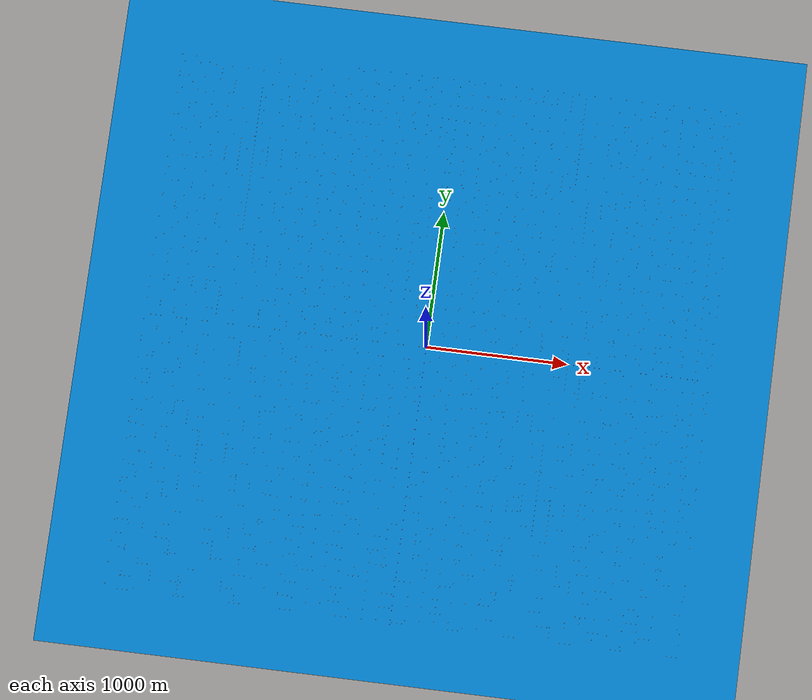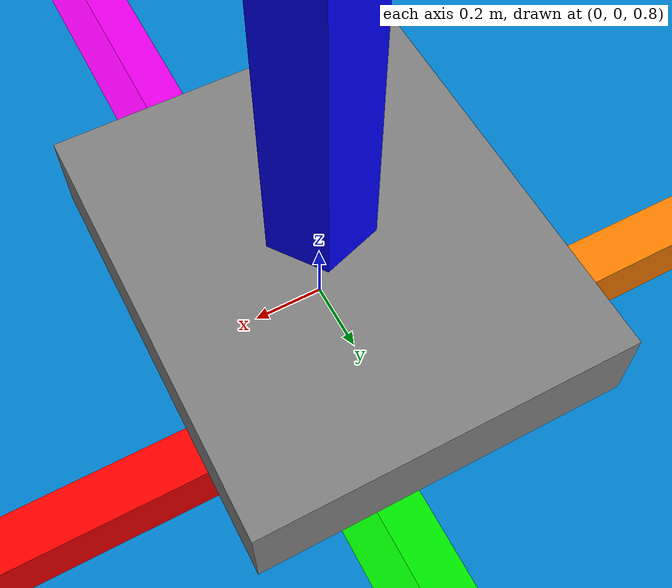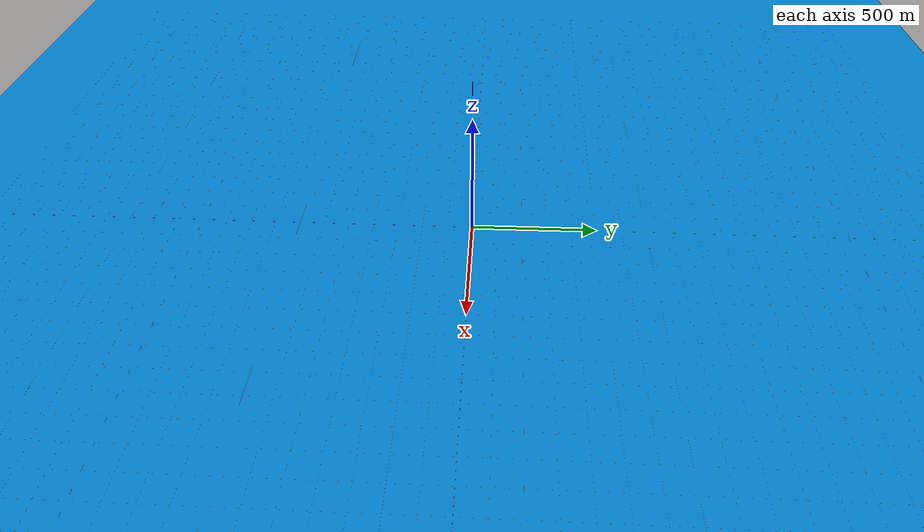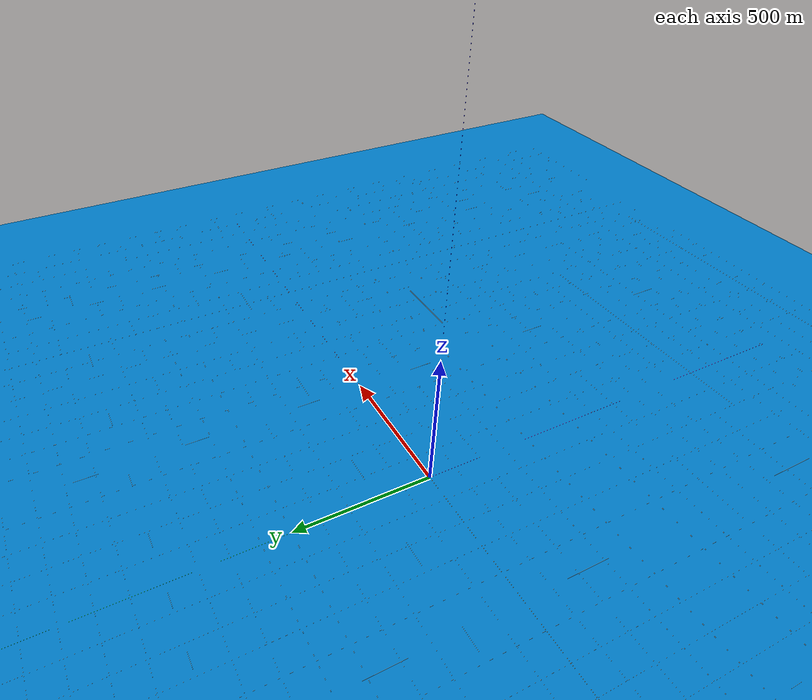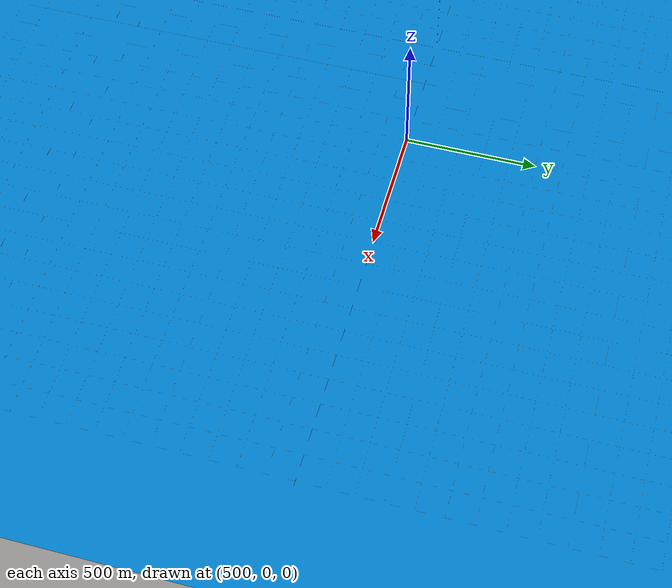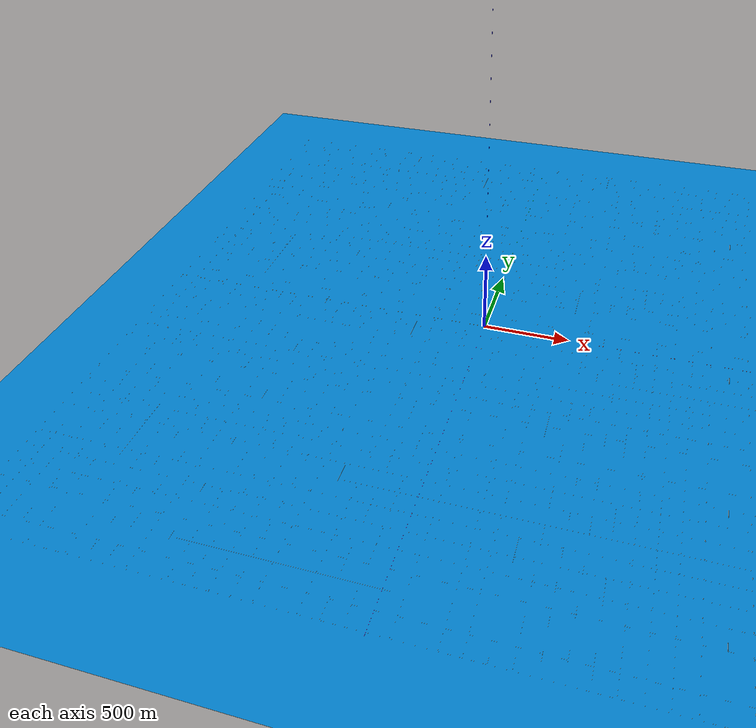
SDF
<?xml version="1.0" ?>
<sdf version="1.9">
  <world name="vuelo">

    <!-- Gravedad desactivada: Simulink calcula la dinámica completa -->
    <gravity>0 0 0</gravity>

    <!-- Física: paso de integración rápido para sincronizar con Simulink a 100Hz -->
    <physics name="default_physics" type="dart">
      <max_step_size>0.01</max_step_size>
      <real_time_factor>1.0</real_time_factor>
      <real_time_update_rate>100</real_time_update_rate>
    </physics>

    <!-- Plugin de ROS 2 para Gazebo Harmonic -->
    <!-- Reemplaza libgazebo_ros_state.so de Classic -->
    <!-- El bridge se configura en el launch file de ROS 2 -->

    <!-- Iluminación: reemplaza model://sun de Classic -->
    <light type="directional" name="sun">
      <cast_shadows>true</cast_shadows>
      <pose>0 0 100 0 0 0</pose>
      <diffuse>1.0 1.0 1.0 1.0</diffuse>
      <specular>0.5 0.5 0.5 1.0</specular>
      <direction>-0.5 0.1 -0.9</direction>
    </light>

    <!-- Océano: plano estático con material PBR azul -->
    <!-- libgazebo_ros_wave_visual.so no existe en Harmonic -->
    <!-- Las olas se simulan matematicamente en Simulink via topics ROS 2 -->
    <model name="ocean">
      <static>true</static>
      <pose>0 0 0 0 0 0</pose>
      <link name="ocean_link">
        <visual name="ocean_visual">
          <geometry>
            <plane>
              <normal>0 0 1</normal>
              <size>20000 20000</size>
            </plane>
          </geometry>
          <material>
            <!-- Material PBR nativo Harmonic/OGRE2 - reemplaza Gazebo/Water -->
            <ambient>0.0 0.35 0.60 0.85</ambient>
            <diffuse>0.0 0.50 0.80 0.85</diffuse>
            <specular>0.4 0.4 0.4 1.0</specular>
            <pbr>
              <metal>
                <metalness>0.05</metalness>
                <roughness>0.3</roughness>
              </metal>
            </pbr>
          </material>
        </visual>
        <!-- Colisión del océano para referencia de altura -->
        <collision name="ocean_collision">
          <geometry>
            <plane>
              <normal>0 0 1</normal>
              <size>20000 20000</size>
            </plane>
          </geometry>
        </collision>
      </link>
    </model>

    <!-- Modelo del ekranoplano -->
    <!-- Cargado desde la carpeta models/ local -->
    <!-- Su posición se actualiza desde Simulink via ros_gz_bridge -->
    <include>
      <name>ekranoplano</name>
      <uri>model://mi_ekranoplano</uri>
      <!-- Posición inicial: z=1m sobre el océano, match con z_NED inicial de Simulink -->
      <pose>0 0 1 0 0 0</pose>
    </include>

    <!-- Rosa de referencia de ejes XY -->
    <include>
      <name>ejes_radiales</name>
      <uri>model://rosa_referencia</uri>
      <pose>0 0 0 0 0 0</pose>
    </include>

    <!-- Configuración GUI de Gazebo Harmonic -->
    <!-- libKeyboardGUIPlugin.so no existe en Harmonic -->
    <!-- El grid es nativo en la GUI de Harmonic, no necesita declaración -->
    <gui fullscreen="0">
      <plugin filename="MinimalScene" name="3D View">
        <gz-gui>
          <title>3D View</title>
          <property type="bool" key="showTitleBar">false</property>
          <property type="string" key="state">docked</property>
        </gz-gui>
        <engine>ogre2</engine>
        <scene>scene</scene>
        <ambient_light>0.4 0.4 0.4</ambient_light>
        <background_color>0.5 0.7 1.0</background_color>
        <camera_pose>5 -5 2 0 0.2 2.3</camera_pose>
        <camera_clip>
          <near>0.1</near>
          <far>50000</far>
        </camera_clip>
      </plugin>
      <plugin filename="GzSceneManager" name="Scene Manager">
        <gz-gui>
          <property key="resizable" type="bool">false</property>
          <property key="width" type="double">5</property>
          <property key="height" type="double">5</property>
          <property key="state" type="string">floating</property>
          <property key="showTitleBar" type="bool">false</property>
        </gz-gui>
      </plugin>
      <plugin filename="InteractiveViewControl" name="Interactive view control">
        <gz-gui>
          <property key="resizable" type="bool">false</property>
          <property key="width" type="double">5</property>
          <property key="height" type="double">5</property>
          <property key="state" type="string">floating</property>
          <property key="showTitleBar" type="bool">false</property>
        </gz-gui>
      </plugin>
    </gui>

  </world>
</sdf>

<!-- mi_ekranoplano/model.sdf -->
<sdf version="1.6">
  <model name="mi_ekranoplano">
    <static>true</static>
    <link name="base_link">
      <visual name="visual">

        <pose>0 0 0 0 0 0</pose>
        <geometry>
          <mesh>
            <uri>model://mi_ekranoplano/meshes/AIRFISH-8_EKRANOPLANO.dae</uri>
            <scale>1 1 1</scale>
          </mesh>
        </geometry>
      </visual>

      <collision name="collision">
        <pose>0 0 0 1.5708 0 1.5708</pose>
        <geometry>
          <mesh>
            <uri>model://mi_ekranoplano/meshes/AIRFISH-8_EKRANOPLANO.dae</uri>
            <scale>1 1 1</scale>
          </mesh>
        </geometry>
      </collision>

    </link>
  </model>
</sdf>

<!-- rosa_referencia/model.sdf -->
<sdf version="1.6">
  <model name="xy_reference_wheel">
    <static>true</static>
    <pose>0 0 0.02 0 0 0</pose>

    <!-- === EJE X+ ROJO === -->
    <link name="axis_x_body">
      <visual name="vis">
        <pose>1000 0 0  0 1.5707963 0</pose>
        <geometry><cylinder><radius>0.15</radius><length>2000</length></cylinder></geometry>
        <material><ambient>1 0 0 1</ambient><diffuse>1 0 0 1</diffuse></material>
      </visual>
    </link>
    <link name="axis_x_tip">
      <visual name="vis">
        <pose>2008 0 0  0 1.5707963 0</pose>
        <geometry><cylinder><radius>0.4</radius><length>16</length></cylinder></geometry>
        <material><ambient>1 0 0 1</ambient><diffuse>1 0 0 1</diffuse></material>
      </visual>
    </link>

    <!-- === EJE X- NARANJA === -->
    <link name="axis_xneg_body">
      <visual name="vis">
        <pose>-1000 0 0  0 1.5707963 0</pose>
        <geometry><cylinder><radius>0.15</radius><length>2000</length></cylinder></geometry>
        <material><ambient>1 0.5 0 1</ambient><diffuse>1 0.5 0 1</diffuse></material>
      </visual>
    </link>
    <link name="axis_xneg_tip">
      <visual name="vis">
        <pose>-2008 0 0  0 1.5707963 0</pose>
        <geometry><cylinder><radius>0.4</radius><length>16</length></cylinder></geometry>
        <material><ambient>1 0.5 0 1</ambient><diffuse>1 0.5 0 1</diffuse></material>
      </visual>
    </link>

    <!-- === EJE Y+ VERDE === -->
    <link name="axis_y_body">
      <visual name="vis">
        <pose>0 1000 0  1.5707963 0 0</pose>
        <geometry><cylinder><radius>0.15</radius><length>2000</length></cylinder></geometry>
        <material><ambient>0 1 0 1</ambient><diffuse>0 1 0 1</diffuse></material>
      </visual>
    </link>
    <link name="axis_y_tip">
      <visual name="vis">
        <pose>0 2008 0  1.5707963 0 0</pose>
        <geometry><cylinder><radius>0.4</radius><length>16</length></cylinder></geometry>
        <material><ambient>0 1 0 1</ambient><diffuse>0 1 0 1</diffuse></material>
      </visual>
    </link>

    <!-- === EJE Y- MAGENTA === -->
    <link name="axis_yneg_body">
      <visual name="vis">
        <pose>0 -1000 0  1.5707963 0 0</pose>
        <geometry><cylinder><radius>0.15</radius><length>2000</length></cylinder></geometry>
        <material><ambient>1 0 1 1</ambient><diffuse>1 0 1 1</diffuse></material>
      </visual>
    </link>
    <link name="axis_yneg_tip">
      <visual name="vis">
        <pose>0 -2008 0  1.5707963 0 0</pose>
        <geometry><cylinder><radius>0.4</radius><length>16</length></cylinder></geometry>
        <material><ambient>1 0 1 1</ambient><diffuse>1 0 1 1</diffuse></material>
      </visual>
    </link>

    <!-- === EJE Z+ AZUL === -->
    <link name="axis_z_body">
      <visual name="vis">
        <pose>0 0 1000  0 0 0</pose>
        <geometry><cylinder><radius>0.15</radius><length>2000</length></cylinder></geometry>
        <material><ambient>0 0 1 1</ambient><diffuse>0 0 1 1</diffuse></material>
      </visual>
    </link>
    <link name="axis_z_tip">
      <visual name="vis">
        <pose>0 0 2008  0 0 0</pose>
        <geometry><cylinder><radius>0.4</radius><length>16</length></cylinder></geometry>
        <material><ambient>0 0 1 1</ambient><diffuse>0 0 1 1</diffuse></material>
      </visual>
    </link>

    <!-- === MALLA DE REFERENCIA XY (espaciado 100 m, extensión ±2000 m) === -->
    <!-- z=0.05 para evitar z-fighting con el océano, color sólido blanco tenue -->
    <link name="grid_x_0">
      <visual name="vis">
        <pose>0 -2000 0.05  0 1.5707963 0</pose>
        <geometry><cylinder><radius>0.08</radius><length>4000</length></cylinder></geometry>
        <material>
          <ambient>0.9 0.9 0.9 1</ambient>
          <diffuse>0.9 0.9 0.9 1</diffuse>
          <transparency>0.5</transparency>
        </material>
      </visual>
    </link>
    <link name="grid_x_1">
      <visual name="vis">
        <pose>0 -1900 0.05  0 1.5707963 0</pose>
        <geometry><cylinder><radius>0.08</radius><length>4000</length></cylinder></geometry>
        <material>
          <ambient>0.9 0.9 0.9 1</ambient>
          <diffuse>0.9 0.9 0.9 1</diffuse>
          <transparency>0.5</transparency>
        </material>
      </visual>
    </link>
    <link name="grid_x_2">
      <visual name="vis">
        <pose>0 -1800 0.05  0 1.5707963 0</pose>
        <geometry><cylinder><radius>0.08</radius><length>4000</length></cylinder></geometry>
        <material>
          <ambient>0.9 0.9 0.9 1</ambient>
          <diffuse>0.9 0.9 0.9 1</diffuse>
          <transparency>0.5</transparency>
        </material>
      </visual>
    </link>
    <link name="grid_x_3">
      <visual name="vis">
        <pose>0 -1700 0.05  0 1.5707963 0</pose>
        <geometry><cylinder><radius>0.08</radius><length>4000</length></cylinder></geometry>
        <material>
          <ambient>0.9 0.9 0.9 1</ambient>
          <diffuse>0.9 0.9 0.9 1</diffuse>
          <transparency>0.5</transparency>
        </material>
      </visual>
    </link>
    <link name="grid_x_4">
      <visual name="vis">
        <pose>0 -1600 0.05  0 1.5707963 0</pose>
        <geometry><cylinder><radius>0.08</radius><length>4000</length></cylinder></geometry>
        <material>
          <ambient>0.9 0.9 0.9 1</ambient>
          <diffuse>0.9 0.9 0.9 1</diffuse>
          <transparency>0.5</transparency>
        </material>
      </visual>
    </link>
    <link name="grid_x_5">
      <visual name="vis">
        <pose>0 -1500 0.05  0 1.5707963 0</pose>
        <geometry><cylinder><radius>0.08</radius><length>4000</length></cylinder></geometry>
        <material>
          <ambient>0.9 0.9 0.9 1</ambient>
          <diffuse>0.9 0.9 0.9 1</diffuse>
          <transparency>0.5</transparency>
        </material>
      </visual>
    </link>
    <link name="grid_x_6">
      <visual name="vis">
        <pose>0 -1400 0.05  0 1.5707963 0</pose>
        <geometry><cylinder><radius>0.08</radius><length>4000</length></cylinder></geometry>
        <material>
          <ambient>0.9 0.9 0.9 1</ambient>
          <diffuse>0.9 0.9 0.9 1</diffuse>
          <transparency>0.5</transparency>
        </material>
      </visual>
    </link>
    <link name="grid_x_7">
      <visual name="vis">
        <pose>0 -1300 0.05  0 1.5707963 0</pose>
        <geometry><cylinder><radius>0.08</radius><length>4000</length></cylinder></geometry>
        <material>
          <ambient>0.9 0.9 0.9 1</ambient>
          <diffuse>0.9 0.9 0.9 1</diffuse>
          <transparency>0.5</transparency>
        </material>
      </visual>
    </link>
    <link name="grid_x_8">
      <visual name="vis">
        <pose>0 -1200 0.05  0 1.5707963 0</pose>
        <geometry><cylinder><radius>0.08</radius><length>4000</length></cylinder></geometry>
        <material>
          <ambient>0.9 0.9 0.9 1</ambient>
          <diffuse>0.9 0.9 0.9 1</diffuse>
          <transparency>0.5</transparency>
        </material>
      </visual>
    </link>
    <link name="grid_x_9">
      <visual name="vis">
        <pose>0 -1100 0.05  0 1.5707963 0</pose>
        <geometry><cylinder><radius>0.08</radius><length>4000</length></cylinder></geometry>
        <material>
          <ambient>0.9 0.9 0.9 1</ambient>
          <diffuse>0.9 0.9 0.9 1</diffuse>
          <transparency>0.5</transparency>
        </material>
      </visual>
    </link>
    <link name="grid_x_10">
      <visual name="vis">
        <pose>0 -1000 0.05  0 1.5707963 0</pose>
        <geometry><cylinder><radius>0.08</radius><length>4000</length></cylinder></geometry>
        <material>
          <ambient>0.9 0.9 0.9 1</ambient>
          <diffuse>0.9 0.9 0.9 1</diffuse>
          <transparency>0.5</transparency>
        </material>
      </visual>
    </link>
    <link name="grid_x_11">
      <visual name="vis">
        <pose>0 -900 0.05  0 1.5707963 0</pose>
        <geometry><cylinder><radius>0.08</radius><length>4000</length></cylinder></geometry>
        <material>
          <ambient>0.9 0.9 0.9 1</ambient>
          <diffuse>0.9 0.9 0.9 1</diffuse>
          <transparency>0.5</transparency>
        </material>
      </visual>
    </link>
    <link name="grid_x_12">
      <visual name="vis">
        <pose>0 -800 0.05  0 1.5707963 0</pose>
        <geometry><cylinder><radius>0.08</radius><length>4000</length></cylinder></geometry>
        <material>
          <ambient>0.9 0.9 0.9 1</ambient>
          <diffuse>0.9 0.9 0.9 1</diffuse>
          <transparency>0.5</transparency>
        </material>
      </visual>
    </link>
    <link name="grid_x_13">
      <visual name="vis">
        <pose>0 -700 0.05  0 1.5707963 0</pose>
        <geometry><cylinder><radius>0.08</radius><length>4000</length></cylinder></geometry>
        <material>
          <ambient>0.9 0.9 0.9 1</ambient>
          <diffuse>0.9 0.9 0.9 1</diffuse>
          <transparency>0.5</transparency>
        </material>
      </visual>
    </link>
    <link name="grid_x_14">
      <visual name="vis">
        <pose>0 -600 0.05  0 1.5707963 0</pose>
        <geometry><cylinder><radius>0.08</radius><length>4000</length></cylinder></geometry>
        <material>
          <ambient>0.9 0.9 0.9 1</ambient>
          <diffuse>0.9 0.9 0.9 1</diffuse>
          <transparency>0.5</transparency>
        </material>
      </visual>
    </link>
    <link name="grid_x_15">
      <visual name="vis">
        <pose>0 -500 0.05  0 1.5707963 0</pose>
        <geometry><cylinder><radius>0.08</radius><length>4000</length></cylinder></geometry>
        <material>
          <ambient>0.9 0.9 0.9 1</ambient>
          <diffuse>0.9 0.9 0.9 1</diffuse>
          <transparency>0.5</transparency>
        </material>
      </visual>
    </link>
    <link name="grid_x_16">
      <visual name="vis">
        <pose>0 -400 0.05  0 1.5707963 0</pose>
        <geometry><cylinder><radius>0.08</radius><length>4000</length></cylinder></geometry>
        <material>
          <ambient>0.9 0.9 0.9 1</ambient>
          <diffuse>0.9 0.9 0.9 1</diffuse>
          <transparency>0.5</transparency>
        </material>
      </visual>
    </link>
    <link name="grid_x_17">
      <visual name="vis">
        <pose>0 -300 0.05  0 1.5707963 0</pose>
        <geometry><cylinder><radius>0.08</radius><length>4000</length></cylinder></geometry>
        <material>
          <ambient>0.9 0.9 0.9 1</ambient>
          <diffuse>0.9 0.9 0.9 1</diffuse>
          <transparency>0.5</transparency>
        </material>
      </visual>
    </link>
    <link name="grid_x_18">
      <visual name="vis">
        <pose>0 -200 0.05  0 1.5707963 0</pose>
        <geometry><cylinder><radius>0.08</radius><length>4000</length></cylinder></geometry>
        <material>
          <ambient>0.9 0.9 0.9 1</ambient>
          <diffuse>0.9 0.9 0.9 1</diffuse>
          <transparency>0.5</transparency>
        </material>
      </visual>
    </link>
    <link name="grid_x_19">
      <visual name="vis">
        <pose>0 -100 0.05  0 1.5707963 0</pose>
        <geometry><cylinder><radius>0.08</radius><length>4000</length></cylinder></geometry>
        <material>
          <ambient>0.9 0.9 0.9 1</ambient>
          <diffuse>0.9 0.9 0.9 1</diffuse>
          <transparency>0.5</transparency>
        </material>
      </visual>
    </link>
    <link name="grid_x_20">
      <visual name="vis">
        <pose>0 100 0.05  0 1.5707963 0</pose>
        <geometry><cylinder><radius>0.08</radius><length>4000</length></cylinder></geometry>
        <material>
          <ambient>0.9 0.9 0.9 1</ambient>
          <diffuse>0.9 0.9 0.9 1</diffuse>
          <transparency>0.5</transparency>
        </material>
      </visual>
    </link>
    <link name="grid_x_21">
      <visual name="vis">
        <pose>0 200 0.05  0 1.5707963 0</pose>
        <geometry><cylinder><radius>0.08</radius><length>4000</length></cylinder></geometry>
        <material>
          <ambient>0.9 0.9 0.9 1</ambient>
          <diffuse>0.9 0.9 0.9 1</diffuse>
          <transparency>0.5</transparency>
        </material>
      </visual>
    </link>
    <link name="grid_x_22">
      <visual name="vis">
        <pose>0 300 0.05  0 1.5707963 0</pose>
        <geometry><cylinder><radius>0.08</radius><length>4000</length></cylinder></geometry>
        <material>
          <ambient>0.9 0.9 0.9 1</ambient>
          <diffuse>0.9 0.9 0.9 1</diffuse>
          <transparency>0.5</transparency>
        </material>
      </visual>
    </link>
    <link name="grid_x_23">
      <visual name="vis">
        <pose>0 400 0.05  0 1.5707963 0</pose>
        <geometry><cylinder><radius>0.08</radius><length>4000</length></cylinder></geometry>
        <material>
          <ambient>0.9 0.9 0.9 1</ambient>
          <diffuse>0.9 0.9 0.9 1</diffuse>
          <transparency>0.5</transparency>
        </material>
      </visual>
    </link>
    <link name="grid_x_24">
      <visual name="vis">
        <pose>0 500 0.05  0 1.5707963 0</pose>
        <geometry><cylinder><radius>0.08</radius><length>4000</length></cylinder></geometry>
        <material>
          <ambient>0.9 0.9 0.9 1</ambient>
          <diffuse>0.9 0.9 0.9 1</diffuse>
          <transparency>0.5</transparency>
        </material>
      </visual>
    </link>
    <link name="grid_x_25">
      <visual name="vis">
        <pose>0 600 0.05  0 1.5707963 0</pose>
        <geometry><cylinder><radius>0.08</radius><length>4000</length></cylinder></geometry>
        <material>
          <ambient>0.9 0.9 0.9 1</ambient>
          <diffuse>0.9 0.9 0.9 1</diffuse>
          <transparency>0.5</transparency>
        </material>
      </visual>
    </link>
    <link name="grid_x_26">
      <visual name="vis">
        <pose>0 700 0.05  0 1.5707963 0</pose>
        <geometry><cylinder><radius>0.08</radius><length>4000</length></cylinder></geometry>
        <material>
          <ambient>0.9 0.9 0.9 1</ambient>
          <diffuse>0.9 0.9 0.9 1</diffuse>
          <transparency>0.5</transparency>
        </material>
      </visual>
    </link>
    <link name="grid_x_27">
      <visual name="vis">
        <pose>0 800 0.05  0 1.5707963 0</pose>
        <geometry><cylinder><radius>0.08</radius><length>4000</length></cylinder></geometry>
        <material>
          <ambient>0.9 0.9 0.9 1</ambient>
          <diffuse>0.9 0.9 0.9 1</diffuse>
          <transparency>0.5</transparency>
        </material>
      </visual>
    </link>
    <link name="grid_x_28">
      <visual name="vis">
        <pose>0 900 0.05  0 1.5707963 0</pose>
        <geometry><cylinder><radius>0.08</radius><length>4000</length></cylinder></geometry>
        <material>
          <ambient>0.9 0.9 0.9 1</ambient>
          <diffuse>0.9 0.9 0.9 1</diffuse>
          <transparency>0.5</transparency>
        </material>
      </visual>
    </link>
    <link name="grid_x_29">
      <visual name="vis">
        <pose>0 1000 0.05  0 1.5707963 0</pose>
        <geometry><cylinder><radius>0.08</radius><length>4000</length></cylinder></geometry>
        <material>
          <ambient>0.9 0.9 0.9 1</ambient>
          <diffuse>0.9 0.9 0.9 1</diffuse>
          <transparency>0.5</transparency>
        </material>
      </visual>
    </link>
    <link name="grid_x_30">
      <visual name="vis">
        <pose>0 1100 0.05  0 1.5707963 0</pose>
        <geometry><cylinder><radius>0.08</radius><length>4000</length></cylinder></geometry>
        <material>
          <ambient>0.9 0.9 0.9 1</ambient>
          <diffuse>0.9 0.9 0.9 1</diffuse>
          <transparency>0.5</transparency>
        </material>
      </visual>
    </link>
    <link name="grid_x_31">
      <visual name="vis">
        <pose>0 1200 0.05  0 1.5707963 0</pose>
        <geometry><cylinder><radius>0.08</radius><length>4000</length></cylinder></geometry>
        <material>
          <ambient>0.9 0.9 0.9 1</ambient>
          <diffuse>0.9 0.9 0.9 1</diffuse>
          <transparency>0.5</transparency>
        </material>
      </visual>
    </link>
    <link name="grid_x_32">
      <visual name="vis">
        <pose>0 1300 0.05  0 1.5707963 0</pose>
        <geometry><cylinder><radius>0.08</radius><length>4000</length></cylinder></geometry>
        <material>
          <ambient>0.9 0.9 0.9 1</ambient>
          <diffuse>0.9 0.9 0.9 1</diffuse>
          <transparency>0.5</transparency>
        </material>
      </visual>
    </link>
    <link name="grid_x_33">
      <visual name="vis">
        <pose>0 1400 0.05  0 1.5707963 0</pose>
        <geometry><cylinder><radius>0.08</radius><length>4000</length></cylinder></geometry>
        <material>
          <ambient>0.9 0.9 0.9 1</ambient>
          <diffuse>0.9 0.9 0.9 1</diffuse>
          <transparency>0.5</transparency>
        </material>
      </visual>
    </link>
    <link name="grid_x_34">
      <visual name="vis">
        <pose>0 1500 0.05  0 1.5707963 0</pose>
        <geometry><cylinder><radius>0.08</radius><length>4000</length></cylinder></geometry>
        <material>
          <ambient>0.9 0.9 0.9 1</ambient>
          <diffuse>0.9 0.9 0.9 1</diffuse>
          <transparency>0.5</transparency>
        </material>
      </visual>
    </link>
    <link name="grid_x_35">
      <visual name="vis">
        <pose>0 1600 0.05  0 1.5707963 0</pose>
        <geometry><cylinder><radius>0.08</radius><length>4000</length></cylinder></geometry>
        <material>
          <ambient>0.9 0.9 0.9 1</ambient>
          <diffuse>0.9 0.9 0.9 1</diffuse>
          <transparency>0.5</transparency>
        </material>
      </visual>
    </link>
    <link name="grid_x_36">
      <visual name="vis">
        <pose>0 1700 0.05  0 1.5707963 0</pose>
        <geometry><cylinder><radius>0.08</radius><length>4000</length></cylinder></geometry>
        <material>
          <ambient>0.9 0.9 0.9 1</ambient>
          <diffuse>0.9 0.9 0.9 1</diffuse>
          <transparency>0.5</transparency>
        </material>
      </visual>
    </link>
    <link name="grid_x_37">
      <visual name="vis">
        <pose>0 1800 0.05  0 1.5707963 0</pose>
        <geometry><cylinder><radius>0.08</radius><length>4000</length></cylinder></geometry>
        <material>
          <ambient>0.9 0.9 0.9 1</ambient>
          <diffuse>0.9 0.9 0.9 1</diffuse>
          <transparency>0.5</transparency>
        </material>
      </visual>
    </link>
    <link name="grid_x_38">
      <visual name="vis">
        <pose>0 1900 0.05  0 1.5707963 0</pose>
        <geometry><cylinder><radius>0.08</radius><length>4000</length></cylinder></geometry>
        <material>
          <ambient>0.9 0.9 0.9 1</ambient>
          <diffuse>0.9 0.9 0.9 1</diffuse>
          <transparency>0.5</transparency>
        </material>
      </visual>
    </link>
    <link name="grid_x_39">
      <visual name="vis">
        <pose>0 2000 0.05  0 1.5707963 0</pose>
        <geometry><cylinder><radius>0.08</radius><length>4000</length></cylinder></geometry>
        <material>
          <ambient>0.9 0.9 0.9 1</ambient>
          <diffuse>0.9 0.9 0.9 1</diffuse>
          <transparency>0.5</transparency>
        </material>
      </visual>
    </link>
    <link name="grid_y_0">
      <visual name="vis">
        <pose>-2000 0 0.05  1.5707963 0 0</pose>
        <geometry><cylinder><radius>0.08</radius><length>4000</length></cylinder></geometry>
        <material>
          <ambient>0.9 0.9 0.9 1</ambient>
          <diffuse>0.9 0.9 0.9 1</diffuse>
          <transparency>0.5</transparency>
        </material>
      </visual>
    </link>
    <link name="grid_y_1">
      <visual name="vis">
        <pose>-1900 0 0.05  1.5707963 0 0</pose>
        <geometry><cylinder><radius>0.08</radius><length>4000</length></cylinder></geometry>
        <material>
          <ambient>0.9 0.9 0.9 1</ambient>
          <diffuse>0.9 0.9 0.9 1</diffuse>
          <transparency>0.5</transparency>
        </material>
      </visual>
    </link>
    <link name="grid_y_2">
      <visual name="vis">
        <pose>-1800 0 0.05  1.5707963 0 0</pose>
        <geometry><cylinder><radius>0.08</radius><length>4000</length></cylinder></geometry>
        <material>
          <ambient>0.9 0.9 0.9 1</ambient>
          <diffuse>0.9 0.9 0.9 1</diffuse>
          <transparency>0.5</transparency>
        </material>
      </visual>
    </link>
    <link name="grid_y_3">
      <visual name="vis">
        <pose>-1700 0 0.05  1.5707963 0 0</pose>
        <geometry><cylinder><radius>0.08</radius><length>4000</length></cylinder></geometry>
        <material>
          <ambient>0.9 0.9 0.9 1</ambient>
          <diffuse>0.9 0.9 0.9 1</diffuse>
          <transparency>0.5</transparency>
        </material>
      </visual>
    </link>
    <link name="grid_y_4">
      <visual name="vis">
        <pose>-1600 0 0.05  1.5707963 0 0</pose>
        <geometry><cylinder><radius>0.08</radius><length>4000</length></cylinder></geometry>
        <material>
          <ambient>0.9 0.9 0.9 1</ambient>
          <diffuse>0.9 0.9 0.9 1</diffuse>
          <transparency>0.5</transparency>
        </material>
      </visual>
    </link>
    <link name="grid_y_5">
      <visual name="vis">
        <pose>-1500 0 0.05  1.5707963 0 0</pose>
        <geometry><cylinder><radius>0.08</radius><length>4000</length></cylinder></geometry>
        <material>
          <ambient>0.9 0.9 0.9 1</ambient>
          <diffuse>0.9 0.9 0.9 1</diffuse>
          <transparency>0.5</transparency>
        </material>
      </visual>
    </link>
    <link name="grid_y_6">
      <visual name="vis">
        <pose>-1400 0 0.05  1.5707963 0 0</pose>
        <geometry><cylinder><radius>0.08</radius><length>4000</length></cylinder></geometry>
        <material>
          <ambient>0.9 0.9 0.9 1</ambient>
          <diffuse>0.9 0.9 0.9 1</diffuse>
          <transparency>0.5</transparency>
        </material>
      </visual>
    </link>
    <link name="grid_y_7">
      <visual name="vis">
        <pose>-1300 0 0.05  1.5707963 0 0</pose>
        <geometry><cylinder><radius>0.08</radius><length>4000</length></cylinder></geometry>
        <material>
          <ambient>0.9 0.9 0.9 1</ambient>
          <diffuse>0.9 0.9 0.9 1</diffuse>
          <transparency>0.5</transparency>
        </material>
      </visual>
    </link>
    <link name="grid_y_8">
      <visual name="vis">
        <pose>-1200 0 0.05  1.5707963 0 0</pose>
        <geometry><cylinder><radius>0.08</radius><length>4000</length></cylinder></geometry>
        <material>
          <ambient>0.9 0.9 0.9 1</ambient>
          <diffuse>0.9 0.9 0.9 1</diffuse>
          <transparency>0.5</transparency>
        </material>
      </visual>
    </link>
    <link name="grid_y_9">
      <visual name="vis">
        <pose>-1100 0 0.05  1.5707963 0 0</pose>
        <geometry><cylinder><radius>0.08</radius><length>4000</length></cylinder></geometry>
        <material>
          <ambient>0.9 0.9 0.9 1</ambient>
          <diffuse>0.9 0.9 0.9 1</diffuse>
          <transparency>0.5</transparency>
        </material>
      </visual>
    </link>
    <link name="grid_y_10">
      <visual name="vis">
        <pose>-1000 0 0.05  1.5707963 0 0</pose>
        <geometry><cylinder><radius>0.08</radius><length>4000</length></cylinder></geometry>
        <material>
          <ambient>0.9 0.9 0.9 1</ambient>
          <diffuse>0.9 0.9 0.9 1</diffuse>
          <transparency>0.5</transparency>
        </material>
      </visual>
    </link>
    <link name="grid_y_11">
      <visual name="vis">
        <pose>-900 0 0.05  1.5707963 0 0</pose>
        <geometry><cylinder><radius>0.08</radius><length>4000</length></cylinder></geometry>
        <material>
          <ambient>0.9 0.9 0.9 1</ambient>
          <diffuse>0.9 0.9 0.9 1</diffuse>
          <transparency>0.5</transparency>
        </material>
      </visual>
    </link>
    <link name="grid_y_12">
      <visual name="vis">
        <pose>-800 0 0.05  1.5707963 0 0</pose>
        <geometry><cylinder><radius>0.08</radius><length>4000</length></cylinder></geometry>
        <material>
          <ambient>0.9 0.9 0.9 1</ambient>
          <diffuse>0.9 0.9 0.9 1</diffuse>
          <transparency>0.5</transparency>
        </material>
      </visual>
    </link>
    <link name="grid_y_13">
      <visual name="vis">
        <pose>-700 0 0.05  1.5707963 0 0</pose>
        <geometry><cylinder><radius>0.08</radius><length>4000</length></cylinder></geometry>
        <material>
          <ambient>0.9 0.9 0.9 1</ambient>
          <diffuse>0.9 0.9 0.9 1</diffuse>
          <transparency>0.5</transparency>
        </material>
      </visual>
    </link>
    <link name="grid_y_14">
      <visual name="vis">
        <pose>-600 0 0.05  1.5707963 0 0</pose>
        <geometry><cylinder><radius>0.08</radius><length>4000</length></cylinder></geometry>
        <material>
          <ambient>0.9 0.9 0.9 1</ambient>
          <diffuse>0.9 0.9 0.9 1</diffuse>
          <transparency>0.5</transparency>
        </material>
      </visual>
    </link>
    <link name="grid_y_15">
      <visual name="vis">
        <pose>-500 0 0.05  1.5707963 0 0</pose>
        <geometry><cylinder><radius>0.08</radius><length>4000</length></cylinder></geometry>
        <material>
          <ambient>0.9 0.9 0.9 1</ambient>
          <diffuse>0.9 0.9 0.9 1</diffuse>
          <transparency>0.5</transparency>
        </material>
      </visual>
    </link>
    <link name="grid_y_16">
      <visual name="vis">
        <pose>-400 0 0.05  1.5707963 0 0</pose>
        <geometry><cylinder><radius>0.08</radius><length>4000</length></cylinder></geometry>
        <material>
          <ambient>0.9 0.9 0.9 1</ambient>
          <diffuse>0.9 0.9 0.9 1</diffuse>
          <transparency>0.5</transparency>
        </material>
      </visual>
    </link>
    <link name="grid_y_17">
      <visual name="vis">
        <pose>-300 0 0.05  1.5707963 0 0</pose>
        <geometry><cylinder><radius>0.08</radius><length>4000</length></cylinder></geometry>
        <material>
          <ambient>0.9 0.9 0.9 1</ambient>
          <diffuse>0.9 0.9 0.9 1</diffuse>
          <transparency>0.5</transparency>
        </material>
      </visual>
    </link>
    <link name="grid_y_18">
      <visual name="vis">
        <pose>-200 0 0.05  1.5707963 0 0</pose>
        <geometry><cylinder><radius>0.08</radius><length>4000</length></cylinder></geometry>
        <material>
          <ambient>0.9 0.9 0.9 1</ambient>
          <diffuse>0.9 0.9 0.9 1</diffuse>
          <transparency>0.5</transparency>
        </material>
      </visual>
    </link>
    <link name="grid_y_19">
      <visual name="vis">
        <pose>-100 0 0.05  1.5707963 0 0</pose>
        <geometry><cylinder><radius>0.08</radius><length>4000</length></cylinder></geometry>
        <material>
          <ambient>0.9 0.9 0.9 1</ambient>
          <diffuse>0.9 0.9 0.9 1</diffuse>
          <transparency>0.5</transparency>
        </material>
      </visual>
    </link>
    <link name="grid_y_20">
      <visual name="vis">
        <pose>100 0 0.05  1.5707963 0 0</pose>
        <geometry><cylinder><radius>0.08</radius><length>4000</length></cylinder></geometry>
        <material>
          <ambient>0.9 0.9 0.9 1</ambient>
          <diffuse>0.9 0.9 0.9 1</diffuse>
          <transparency>0.5</transparency>
        </material>
      </visual>
    </link>
    <link name="grid_y_21">
      <visual name="vis">
        <pose>200 0 0.05  1.5707963 0 0</pose>
        <geometry><cylinder><radius>0.08</radius><length>4000</length></cylinder></geometry>
        <material>
          <ambient>0.9 0.9 0.9 1</ambient>
          <diffuse>0.9 0.9 0.9 1</diffuse>
          <transparency>0.5</transparency>
        </material>
      </visual>
    </link>
    <link name="grid_y_22">
      <visual name="vis">
        <pose>300 0 0.05  1.5707963 0 0</pose>
        <geometry><cylinder><radius>0.08</radius><length>4000</length></cylinder></geometry>
        <material>
          <ambient>0.9 0.9 0.9 1</ambient>
          <diffuse>0.9 0.9 0.9 1</diffuse>
          <transparency>0.5</transparency>
        </material>
      </visual>
    </link>
    <link name="grid_y_23">
      <visual name="vis">
        <pose>400 0 0.05  1.5707963 0 0</pose>
        <geometry><cylinder><radius>0.08</radius><length>4000</length></cylinder></geometry>
        <material>
          <ambient>0.9 0.9 0.9 1</ambient>
          <diffuse>0.9 0.9 0.9 1</diffuse>
          <transparency>0.5</transparency>
        </material>
      </visual>
    </link>
    <link name="grid_y_24">
      <visual name="vis">
        <pose>500 0 0.05  1.5707963 0 0</pose>
        <geometry><cylinder><radius>0.08</radius><length>4000</length></cylinder></geometry>
        <material>
          <ambient>0.9 0.9 0.9 1</ambient>
          <diffuse>0.9 0.9 0.9 1</diffuse>
          <transparency>0.5</transparency>
        </material>
      </visual>
    </link>
    <link name="grid_y_25">
      <visual name="vis">
        <pose>600 0 0.05  1.5707963 0 0</pose>
        <geometry><cylinder><radius>0.08</radius><length>4000</length></cylinder></geometry>
        <material>
          <ambient>0.9 0.9 0.9 1</ambient>
          <diffuse>0.9 0.9 0.9 1</diffuse>
          <transparency>0.5</transparency>
        </material>
      </visual>
    </link>
    <link name="grid_y_26">
      <visual name="vis">
        <pose>700 0 0.05  1.5707963 0 0</pose>
        <geometry><cylinder><radius>0.08</radius><length>4000</length></cylinder></geometry>
        <material>
          <ambient>0.9 0.9 0.9 1</ambient>
          <diffuse>0.9 0.9 0.9 1</diffuse>
          <transparency>0.5</transparency>
        </material>
      </visual>
    </link>
    <link name="grid_y_27">
      <visual name="vis">
        <pose>800 0 0.05  1.5707963 0 0</pose>
        <geometry><cylinder><radius>0.08</radius><length>4000</length></cylinder></geometry>
        <material>
          <ambient>0.9 0.9 0.9 1</ambient>
          <diffuse>0.9 0.9 0.9 1</diffuse>
          <transparency>0.5</transparency>
        </material>
      </visual>
    </link>
    <link name="grid_y_28">
      <visual name="vis">
        <pose>900 0 0.05  1.5707963 0 0</pose>
        <geometry><cylinder><radius>0.08</radius><length>4000</length></cylinder></geometry>
        <material>
          <ambient>0.9 0.9 0.9 1</ambient>
          <diffuse>0.9 0.9 0.9 1</diffuse>
          <transparency>0.5</transparency>
        </material>
      </visual>
    </link>
    <link name="grid_y_29">
      <visual name="vis">
        <pose>1000 0 0.05  1.5707963 0 0</pose>
        <geometry><cylinder><radius>0.08</radius><length>4000</length></cylinder></geometry>
        <material>
          <ambient>0.9 0.9 0.9 1</ambient>
          <diffuse>0.9 0.9 0.9 1</diffuse>
          <transparency>0.5</transparency>
        </material>
      </visual>
    </link>
    <link name="grid_y_30">
      <visual name="vis">
        <pose>1100 0 0.05  1.5707963 0 0</pose>
        <geometry><cylinder><radius>0.08</radius><length>4000</length></cylinder></geometry>
        <material>
          <ambient>0.9 0.9 0.9 1</ambient>
          <diffuse>0.9 0.9 0.9 1</diffuse>
          <transparency>0.5</transparency>
        </material>
      </visual>
    </link>
    <link name="grid_y_31">
      <visual name="vis">
        <pose>1200 0 0.05  1.5707963 0 0</pose>
        <geometry><cylinder><radius>0.08</radius><length>4000</length></cylinder></geometry>
        <material>
          <ambient>0.9 0.9 0.9 1</ambient>
          <diffuse>0.9 0.9 0.9 1</diffuse>
          <transparency>0.5</transparency>
        </material>
      </visual>
    </link>
    <link name="grid_y_32">
      <visual name="vis">
        <pose>1300 0 0.05  1.5707963 0 0</pose>
        <geometry><cylinder><radius>0.08</radius><length>4000</length></cylinder></geometry>
        <material>
          <ambient>0.9 0.9 0.9 1</ambient>
          <diffuse>0.9 0.9 0.9 1</diffuse>
          <transparency>0.5</transparency>
        </material>
      </visual>
    </link>
    <link name="grid_y_33">
      <visual name="vis">
        <pose>1400 0 0.05  1.5707963 0 0</pose>
        <geometry><cylinder><radius>0.08</radius><length>4000</length></cylinder></geometry>
        <material>
          <ambient>0.9 0.9 0.9 1</ambient>
          <diffuse>0.9 0.9 0.9 1</diffuse>
          <transparency>0.5</transparency>
        </material>
      </visual>
    </link>
    <link name="grid_y_34">
      <visual name="vis">
        <pose>1500 0 0.05  1.5707963 0 0</pose>
        <geometry><cylinder><radius>0.08</radius><length>4000</length></cylinder></geometry>
        <material>
          <ambient>0.9 0.9 0.9 1</ambient>
          <diffuse>0.9 0.9 0.9 1</diffuse>
          <transparency>0.5</transparency>
        </material>
      </visual>
    </link>
    <link name="grid_y_35">
      <visual name="vis">
        <pose>1600 0 0.05  1.5707963 0 0</pose>
        <geometry><cylinder><radius>0.08</radius><length>4000</length></cylinder></geometry>
        <material>
          <ambient>0.9 0.9 0.9 1</ambient>
          <diffuse>0.9 0.9 0.9 1</diffuse>
          <transparency>0.5</transparency>
        </material>
      </visual>
    </link>
    <link name="grid_y_36">
      <visual name="vis">
        <pose>1700 0 0.05  1.5707963 0 0</pose>
        <geometry><cylinder><radius>0.08</radius><length>4000</length></cylinder></geometry>
        <material>
          <ambient>0.9 0.9 0.9 1</ambient>
          <diffuse>0.9 0.9 0.9 1</diffuse>
          <transparency>0.5</transparency>
        </material>
      </visual>
    </link>
    <link name="grid_y_37">
      <visual name="vis">
        <pose>1800 0 0.05  1.5707963 0 0</pose>
        <geometry><cylinder><radius>0.08</radius><length>4000</length></cylinder></geometry>
        <material>
          <ambient>0.9 0.9 0.9 1</ambient>
          <diffuse>0.9 0.9 0.9 1</diffuse>
          <transparency>0.5</transparency>
        </material>
      </visual>
    </link>
    <link name="grid_y_38">
      <visual name="vis">
        <pose>1900 0 0.05  1.5707963 0 0</pose>
        <geometry><cylinder><radius>0.08</radius><length>4000</length></cylinder></geometry>
        <material>
          <ambient>0.9 0.9 0.9 1</ambient>
          <diffuse>0.9 0.9 0.9 1</diffuse>
          <transparency>0.5</transparency>
        </material>
      </visual>
    </link>
    <link name="grid_y_39">
      <visual name="vis">
        <pose>2000 0 0.05  1.5707963 0 0</pose>
        <geometry><cylinder><radius>0.08</radius><length>4000</length></cylinder></geometry>
        <material>
          <ambient>0.9 0.9 0.9 1</ambient>
          <diffuse>0.9 0.9 0.9 1</diffuse>
          <transparency>0.5</transparency>
        </material>
      </visual>
    </link>

  </model>
</sdf>
